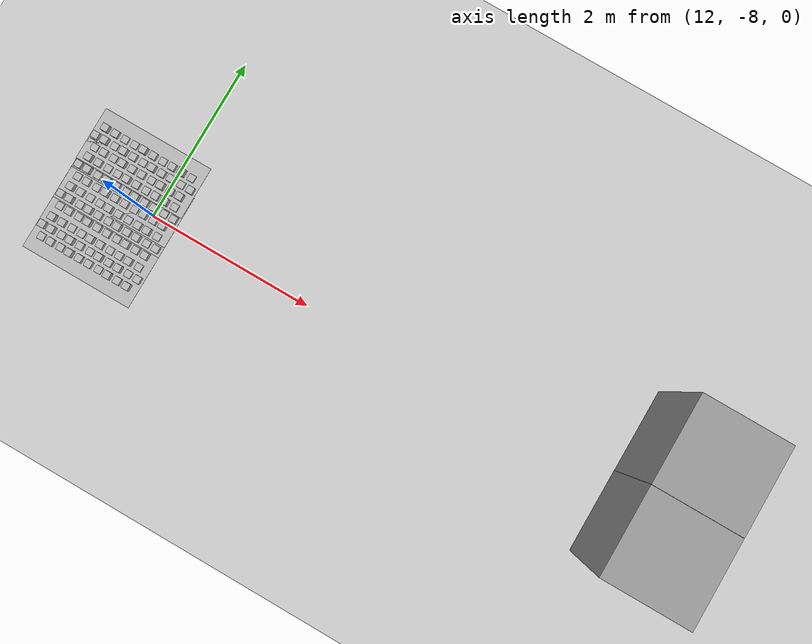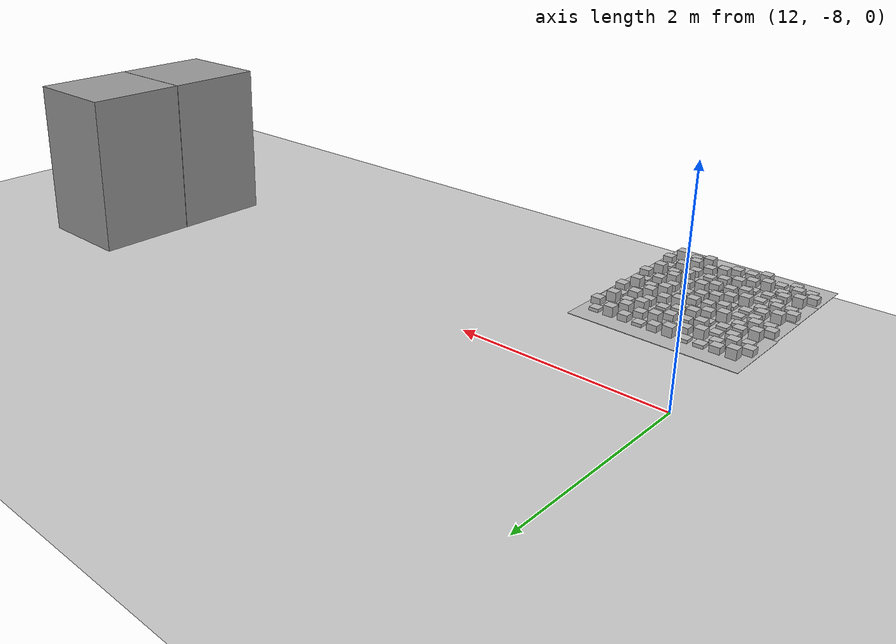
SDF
<sdf version="1.6">
 <world name="default">
  <model name="ground_plane">
   <static>1</static>
   <link name="link">
    <collision name="collision">
     <geometry><plane><normal>0 0 1</normal><size>100 100</size></plane></geometry>
     <surface><friction><ode><mu>100</mu><mu2>50</mu2></ode></friction></surface>
    </collision>
    <visual name="visual">
     <cast_shadows>0</cast_shadows>
     <geometry><plane><normal>0 0 1</normal><size>100 100</size></plane></geometry>
     <material>
      <script><uri>file://media/materials/scripts/gazebo.material</uri><name>Gazebo/Grey</name></script>
     </material>
    </visual>
   </link>
  </model>
  <model name="frc2016_roughterrain_clone_0_clone_clone_0">
   <static>1</static>
   <link name="link">
    <visual name="platform">
     <pose>0 0 0.08269 0 -0 0</pose>
     <geometry><box><size>1.27 0.5969 0.003175</size></box></geometry>
    </visual>
    <collision name="platform">
     <pose>0 0 0.08269 0 -0 0</pose>
     <geometry><box><size>1.27 0.5969 0.003175</size></box></geometry>
    </collision>
    <visual name="row1_block1_sm">
     <pose>0.51435 0.1143 0.09698 0 -0 0</pose>
     <geometry><box><size>0.0762 0.0762 0.0254</size></box></geometry>
    </visual>
    <collision name="row1_block1_sm">
     <pose>0.51435 0.1143 0.09698 0 -0 0</pose>
     <geometry><box><size>0.0762 0.0762 0.0254</size></box></geometry>
    </collision>
    <visual name="row1_block2_lg">
     <pose>0.40005 0.1143 0.12238 0 -0 0</pose>
     <geometry><box><size>0.0762 0.0762 0.0762</size></box></geometry>
    </visual>
    <collision name="row1_block2_lg">
     <pose>0.40005 0.1143 0.12238 0 -0 0</pose>
     <geometry><box><size>0.0762 0.0762 0.0762</size></box></geometry>
    </collision>
    <visual name="row1_block3_md">
     <pose>0.28575 0.1143 0.10968 0 -0 0</pose>
     <geometry><box><size>0.0762 0.0762 0.0508</size></box></geometry>
    </visual>
    <collision name="row1_block3_md">
     <pose>0.28575 0.1143 0.10968 0 -0 0</pose>
     <geometry><box><size>0.0762 0.0762 0.0508</size></box></geometry>
    </collision>
    <visual name="row1_block4_sm">
     <pose>0.17145 0.1143 0.09698 0 -0 0</pose>
     <geometry><box><size>0.0762 0.0762 0.0254</size></box></geometry>
    </visual>
    <collision name="row1_block4_sm">
     <pose>0.17145 0.1143 0.09698 0 -0 0</pose>
     <geometry><box><size>0.0762 0.0762 0.0254</size></box></geometry>
    </collision>
    <visual name="row1_block5_md">
     <pose>0.05715 0.1143 0.10968 0 -0 0</pose>
     <geometry><box><size>0.0762 0.0762 0.0508</size></box></geometry>
    </visual>
    <collision name="row1_block5_md">
     <pose>0.05715 0.1143 0.10968 0 -0 0</pose>
     <geometry><box><size>0.0762 0.0762 0.0508</size></box></geometry>
    </collision>
    <visual name="row1_block6_lg">
     <pose>-0.05715 0.1143 0.12238 0 -0 0</pose>
     <geometry><box><size>0.0762 0.0762 0.0762</size></box></geometry>
    </visual>
    <collision name="row1_block6_lg">
     <pose>-0.05715 0.1143 0.12238 0 -0 0</pose>
     <geometry><box><size>0.0762 0.0762 0.0762</size></box></geometry>
    </collision>
    <visual name="row1_block7_sm">
     <pose>-0.17145 0.1143 0.09698 0 -0 0</pose>
     <geometry><box><size>0.0762 0.0762 0.0254</size></box></geometry>
    </visual>
    <collision name="row1_block7_sm">
     <pose>-0.17145 0.1143 0.09698 0 -0 0</pose>
     <geometry><box><size>0.0762 0.0762 0.0254</size></box></geometry>
    </collision>
    <visual name="row1_block8_sm">
     <pose>-0.28575 0.1143 0.09698 0 -0 0</pose>
     <geometry><box><size>0.0762 0.0762 0.0254</size></box></geometry>
    </visual>
    <collision name="row1_block8_sm">
     <pose>-0.28575 0.1143 0.09698 0 -0 0</pose>
     <geometry><box><size>0.0762 0.0762 0.0254</size></box></geometry>
    </collision>
    <visual name="row1_block9_md">
     <pose>-0.40005 0.1143 0.10968 0 -0 0</pose>
     <geometry><box><size>0.0762 0.0762 0.0508</size></box></geometry>
    </visual>
    <collision name="row1_block9_md">
     <pose>-0.40005 0.1143 0.10968 0 -0 0</pose>
     <geometry><box><size>0.0762 0.0762 0.0508</size></box></geometry>
    </collision>
    <visual name="row1_block10_lg">
     <pose>-0.51435 0.1143 0.12238 0 -0 0</pose>
     <geometry><box><size>0.0762 0.0762 0.0762</size></box></geometry>
    </visual>
    <collision name="row1_block10_lg">
     <pose>-0.51435 0.1143 0.12238 0 -0 0</pose>
     <geometry><box><size>0.0762 0.0762 0.0762</size></box></geometry>
    </collision>
    <visual name="row2_block1_md">
     <pose>0.5715 0 0.10968 0 -0 0</pose>
     <geometry><box><size>0.0762 0.0762 0.0508</size></box></geometry>
    </visual>
    <collision name="row2_block1_md">
     <pose>0.5715 0 0.10968 0 -0 0</pose>
     <geometry><box><size>0.0762 0.0762 0.0508</size></box></geometry>
    </collision>
    <visual name="row2_block2_sm">
     <pose>0.4572 0 0.09698 0 -0 0</pose>
     <geometry><box><size>0.0762 0.0762 0.0254</size></box></geometry>
    </visual>
    <collision name="row2_block2_sm">
     <pose>0.4572 0 0.09698 0 -0 0</pose>
     <geometry><box><size>0.0762 0.0762 0.0254</size></box></geometry>
    </collision>
    <visual name="row2_block3_lg">
     <pose>0.3429 0 0.12238 0 -0 0</pose>
     <geometry><box><size>0.0762 0.0762 0.0762</size></box></geometry>
    </visual>
    <collision name="row2_block3_lg">
     <pose>0.3429 0 0.12238 0 -0 0</pose>
     <geometry><box><size>0.0762 0.0762 0.0762</size></box></geometry>
    </collision>
    <visual name="row2_block4_md">
     <pose>0.2286 0 0.10968 0 -0 0</pose>
     <geometry><box><size>0.0762 0.0762 0.0508</size></box></geometry>
    </visual>
    <collision name="row2_block4_md">
     <pose>0.2286 0 0.10968 0 -0 0</pose>
     <geometry><box><size>0.0762 0.0762 0.0508</size></box></geometry>
    </collision>
    <visual name="row2_block5_lg">
     <pose>0.1143 0 0.12238 0 -0 0</pose>
     <geometry><box><size>0.0762 0.0762 0.0762</size></box></geometry>
    </visual>
    <collision name="row2_block5_lg">
     <pose>0.1143 0 0.12238 0 -0 0</pose>
     <geometry><box><size>0.0762 0.0762 0.0762</size></box></geometry>
    </collision>
    <visual name="row2_block6_sm">
     <pose>0 0 0.09698 0 -0 0</pose>
     <geometry><box><size>0.0762 0.0762 0.0254</size></box></geometry>
    </visual>
    <collision name="row2_block6_sm">
     <pose>0 0 0.09698 0 -0 0</pose>
     <geometry><box><size>0.0762 0.0762 0.0254</size></box></geometry>
    </collision>
    <visual name="row2_block7_md">
     <pose>-0.1143 0 0.10968 0 -0 0</pose>
     <geometry><box><size>0.0762 0.0762 0.0508</size></box></geometry>
    </visual>
    <collision name="row2_block7_md">
     <pose>-0.1143 0 0.10968 0 -0 0</pose>
     <geometry><box><size>0.0762 0.0762 0.0508</size></box></geometry>
    </collision>
    <visual name="row2_block8_lg">
     <pose>-0.2286 0 0.12238 0 -0 0</pose>
     <geometry><box><size>0.0762 0.0762 0.0762</size></box></geometry>
    </visual>
    <collision name="row2_block8_lg">
     <pose>-0.2286 0 0.12238 0 -0 0</pose>
     <geometry><box><size>0.0762 0.0762 0.0762</size></box></geometry>
    </collision>
    <visual name="row2_block9_sm">
     <pose>-0.3429 0 0.09698 0 -0 0</pose>
     <geometry><box><size>0.0762 0.0762 0.0254</size></box></geometry>
    </visual>
    <collision name="row2_block9_sm">
     <pose>-0.3429 0 0.09698 0 -0 0</pose>
     <geometry><box><size>0.0762 0.0762 0.0254</size></box></geometry>
    </collision>
    <visual name="row2_block10_lg">
     <pose>-0.4572 0 0.12238 0 -0 0</pose>
     <geometry><box><size>0.0762 0.0762 0.0762</size></box></geometry>
    </visual>
    <collision name="row2_block10_lg">
     <pose>-0.4572 0 0.12238 0 -0 0</pose>
     <geometry><box><size>0.0762 0.0762 0.0762</size></box></geometry>
    </collision>
    <visual name="row2_block11_md">
     <pose>-0.5715 0 0.10968 0 -0 0</pose>
     <geometry><box><size>0.0762 0.0762 0.0508</size></box></geometry>
    </visual>
    <collision name="row2_block11_md">
     <pose>-0.5715 0 0.10968 0 -0 0</pose>
     <geometry><box><size>0.0762 0.0762 0.0508</size></box></geometry>
    </collision>
    <visual name="row3_block1_lg">
     <pose>0.51435 -0.1143 0.12238 0 -0 0</pose>
     <geometry><box><size>0.0762 0.0762 0.0762</size></box></geometry>
    </visual>
    <collision name="row3_block1_lg">
     <pose>0.51435 -0.1143 0.12238 0 -0 0</pose>
     <geometry><box><size>0.0762 0.0762 0.0762</size></box></geometry>
    </collision>
    <visual name="row3_block2_md">
     <pose>0.40005 -0.1143 0.10968 0 -0 0</pose>
     <geometry><box><size>0.0762 0.0762 0.0508</size></box></geometry>
    </visual>
    <collision name="row3_block2_md">
     <pose>0.40005 -0.1143 0.10968 0 -0 0</pose>
     <geometry><box><size>0.0762 0.0762 0.0508</size></box></geometry>
    </collision>
    <visual name="row3_block3_lg">
     <pose>0.28575 -0.1143 0.12238 0 -0 0</pose>
     <geometry><box><size>0.0762 0.0762 0.0762</size></box></geometry>
    </visual>
    <collision name="row3_block3_lg">
     <pose>0.28575 -0.1143 0.12238 0 -0 0</pose>
     <geometry><box><size>0.0762 0.0762 0.0762</size></box></geometry>
    </collision>
    <visual name="row3_block4_sm">
     <pose>0.17145 -0.1143 0.09698 0 -0 0</pose>
     <geometry><box><size>0.0762 0.0762 0.0254</size></box></geometry>
    </visual>
    <collision name="row3_block4_sm">
     <pose>0.17145 -0.1143 0.09698 0 -0 0</pose>
     <geometry><box><size>0.0762 0.0762 0.0254</size></box></geometry>
    </collision>
    <visual name="row3_block5_md">
     <pose>0.05715 -0.1143 0.10968 0 -0 0</pose>
     <geometry><box><size>0.0762 0.0762 0.0508</size></box></geometry>
    </visual>
    <collision name="row3_block5_md">
     <pose>0.05715 -0.1143 0.10968 0 -0 0</pose>
     <geometry><box><size>0.0762 0.0762 0.0508</size></box></geometry>
    </collision>
    <visual name="row3_block6_md">
     <pose>-0.05715 -0.1143 0.10968 0 -0 0</pose>
     <geometry><box><size>0.0762 0.0762 0.0508</size></box></geometry>
    </visual>
    <collision name="row3_block6_md">
     <pose>-0.05715 -0.1143 0.10968 0 -0 0</pose>
     <geometry><box><size>0.0762 0.0762 0.0508</size></box></geometry>
    </collision>
    <visual name="row3_block7_lg">
     <pose>-0.17145 -0.1143 0.12238 0 -0 0</pose>
     <geometry><box><size>0.0762 0.0762 0.0762</size></box></geometry>
    </visual>
    <collision name="row3_block7_lg">
     <pose>-0.17145 -0.1143 0.12238 0 -0 0</pose>
     <geometry><box><size>0.0762 0.0762 0.0762</size></box></geometry>
    </collision>
    <visual name="row3_block8_sm">
     <pose>-0.28575 -0.1143 0.09698 0 -0 0</pose>
     <geometry><box><size>0.0762 0.0762 0.0254</size></box></geometry>
    </visual>
    <collision name="row3_block8_sm">
     <pose>-0.28575 -0.1143 0.09698 0 -0 0</pose>
     <geometry><box><size>0.0762 0.0762 0.0254</size></box></geometry>
    </collision>
    <visual name="row3_block9_md">
     <pose>-0.40005 -0.1143 0.10968 0 -0 0</pose>
     <geometry><box><size>0.0762 0.0762 0.0508</size></box></geometry>
    </visual>
    <collision name="row3_block9_md">
     <pose>-0.40005 -0.1143 0.10968 0 -0 0</pose>
     <geometry><box><size>0.0762 0.0762 0.0508</size></box></geometry>
    </collision>
    <visual name="row3_block10_sm">
     <pose>-0.51435 -0.1143 0.09698 0 -0 0</pose>
     <geometry><box><size>0.0762 0.0762 0.0254</size></box></geometry>
    </visual>
    <collision name="row3_block10_sm">
     <pose>-0.51435 -0.1143 0.09698 0 -0 0</pose>
     <geometry><box><size>0.0762 0.0762 0.0254</size></box></geometry>
    </collision>
   </link>
   <pose>11.8871 -7.6007 0.826533 0 -0 0</pose>
  </model>
  <model name="frc2016_roughterrain_clone_0_clone_clone_1">
   <static>1</static>
   <link name="link">
    <visual name="platform">
     <pose>0 0 0.08269 0 -0 0</pose>
     <geometry><box><size>1.27 0.5969 0.003175</size></box></geometry>
    </visual>
    <collision name="platform">
     <pose>0 0 0.08269 0 -0 0</pose>
     <geometry><box><size>1.27 0.5969 0.003175</size></box></geometry>
    </collision>
    <visual name="row1_block1_sm">
     <pose>0.51435 0.1143 0.09698 0 -0 0</pose>
     <geometry><box><size>0.0762 0.0762 0.0254</size></box></geometry>
    </visual>
    <collision name="row1_block1_sm">
     <pose>0.51435 0.1143 0.09698 0 -0 0</pose>
     <geometry><box><size>0.0762 0.0762 0.0254</size></box></geometry>
    </collision>
    <visual name="row1_block2_lg">
     <pose>0.40005 0.1143 0.12238 0 -0 0</pose>
     <geometry><box><size>0.0762 0.0762 0.0762</size></box></geometry>
    </visual>
    <collision name="row1_block2_lg">
     <pose>0.40005 0.1143 0.12238 0 -0 0</pose>
     <geometry><box><size>0.0762 0.0762 0.0762</size></box></geometry>
    </collision>
    <visual name="row1_block3_md">
     <pose>0.28575 0.1143 0.10968 0 -0 0</pose>
     <geometry><box><size>0.0762 0.0762 0.0508</size></box></geometry>
    </visual>
    <collision name="row1_block3_md">
     <pose>0.28575 0.1143 0.10968 0 -0 0</pose>
     <geometry><box><size>0.0762 0.0762 0.0508</size></box></geometry>
    </collision>
    <visual name="row1_block4_sm">
     <pose>0.17145 0.1143 0.09698 0 -0 0</pose>
     <geometry><box><size>0.0762 0.0762 0.0254</size></box></geometry>
    </visual>
    <collision name="row1_block4_sm">
     <pose>0.17145 0.1143 0.09698 0 -0 0</pose>
     <geometry><box><size>0.0762 0.0762 0.0254</size></box></geometry>
    </collision>
    <visual name="row1_block5_md">
     <pose>0.05715 0.1143 0.10968 0 -0 0</pose>
     <geometry><box><size>0.0762 0.0762 0.0508</size></box></geometry>
    </visual>
    <collision name="row1_block5_md">
     <pose>0.05715 0.1143 0.10968 0 -0 0</pose>
     <geometry><box><size>0.0762 0.0762 0.0508</size></box></geometry>
    </collision>
    <visual name="row1_block6_lg">
     <pose>-0.05715 0.1143 0.12238 0 -0 0</pose>
     <geometry><box><size>0.0762 0.0762 0.0762</size></box></geometry>
    </visual>
    <collision name="row1_block6_lg">
     <pose>-0.05715 0.1143 0.12238 0 -0 0</pose>
     <geometry><box><size>0.0762 0.0762 0.0762</size></box></geometry>
    </collision>
    <visual name="row1_block7_sm">
     <pose>-0.17145 0.1143 0.09698 0 -0 0</pose>
     <geometry><box><size>0.0762 0.0762 0.0254</size></box></geometry>
    </visual>
    <collision name="row1_block7_sm">
     <pose>-0.17145 0.1143 0.09698 0 -0 0</pose>
     <geometry><box><size>0.0762 0.0762 0.0254</size></box></geometry>
    </collision>
    <visual name="row1_block8_sm">
     <pose>-0.28575 0.1143 0.09698 0 -0 0</pose>
     <geometry><box><size>0.0762 0.0762 0.0254</size></box></geometry>
    </visual>
    <collision name="row1_block8_sm">
     <pose>-0.28575 0.1143 0.09698 0 -0 0</pose>
     <geometry><box><size>0.0762 0.0762 0.0254</size></box></geometry>
    </collision>
    <visual name="row1_block9_md">
     <pose>-0.40005 0.1143 0.10968 0 -0 0</pose>
     <geometry><box><size>0.0762 0.0762 0.0508</size></box></geometry>
    </visual>
    <collision name="row1_block9_md">
     <pose>-0.40005 0.1143 0.10968 0 -0 0</pose>
     <geometry><box><size>0.0762 0.0762 0.0508</size></box></geometry>
    </collision>
    <visual name="row1_block10_lg">
     <pose>-0.51435 0.1143 0.12238 0 -0 0</pose>
     <geometry><box><size>0.0762 0.0762 0.0762</size></box></geometry>
    </visual>
    <collision name="row1_block10_lg">
     <pose>-0.51435 0.1143 0.12238 0 -0 0</pose>
     <geometry><box><size>0.0762 0.0762 0.0762</size></box></geometry>
    </collision>
    <visual name="row2_block1_md">
     <pose>0.5715 0 0.10968 0 -0 0</pose>
     <geometry><box><size>0.0762 0.0762 0.0508</size></box></geometry>
    </visual>
    <collision name="row2_block1_md">
     <pose>0.5715 0 0.10968 0 -0 0</pose>
     <geometry><box><size>0.0762 0.0762 0.0508</size></box></geometry>
    </collision>
    <visual name="row2_block2_sm">
     <pose>0.4572 0 0.09698 0 -0 0</pose>
     <geometry><box><size>0.0762 0.0762 0.0254</size></box></geometry>
    </visual>
    <collision name="row2_block2_sm">
     <pose>0.4572 0 0.09698 0 -0 0</pose>
     <geometry><box><size>0.0762 0.0762 0.0254</size></box></geometry>
    </collision>
    <visual name="row2_block3_lg">
     <pose>0.3429 0 0.12238 0 -0 0</pose>
     <geometry><box><size>0.0762 0.0762 0.0762</size></box></geometry>
    </visual>
    <collision name="row2_block3_lg">
     <pose>0.3429 0 0.12238 0 -0 0</pose>
     <geometry><box><size>0.0762 0.0762 0.0762</size></box></geometry>
    </collision>
    <visual name="row2_block4_md">
     <pose>0.2286 0 0.10968 0 -0 0</pose>
     <geometry><box><size>0.0762 0.0762 0.0508</size></box></geometry>
    </visual>
    <collision name="row2_block4_md">
     <pose>0.2286 0 0.10968 0 -0 0</pose>
     <geometry><box><size>0.0762 0.0762 0.0508</size></box></geometry>
    </collision>
    <visual name="row2_block5_lg">
     <pose>0.1143 0 0.12238 0 -0 0</pose>
     <geometry><box><size>0.0762 0.0762 0.0762</size></box></geometry>
    </visual>
    <collision name="row2_block5_lg">
     <pose>0.1143 0 0.12238 0 -0 0</pose>
     <geometry><box><size>0.0762 0.0762 0.0762</size></box></geometry>
    </collision>
    <visual name="row2_block6_sm">
     <pose>0 0 0.09698 0 -0 0</pose>
     <geometry><box><size>0.0762 0.0762 0.0254</size></box></geometry>
    </visual>
    <collision name="row2_block6_sm">
     <pose>0 0 0.09698 0 -0 0</pose>
     <geometry><box><size>0.0762 0.0762 0.0254</size></box></geometry>
    </collision>
    <visual name="row2_block7_md">
     <pose>-0.1143 0 0.10968 0 -0 0</pose>
     <geometry><box><size>0.0762 0.0762 0.0508</size></box></geometry>
    </visual>
    <collision name="row2_block7_md">
     <pose>-0.1143 0 0.10968 0 -0 0</pose>
     <geometry><box><size>0.0762 0.0762 0.0508</size></box></geometry>
    </collision>
    <visual name="row2_block8_lg">
     <pose>-0.2286 0 0.12238 0 -0 0</pose>
     <geometry><box><size>0.0762 0.0762 0.0762</size></box></geometry>
    </visual>
    <collision name="row2_block8_lg">
     <pose>-0.2286 0 0.12238 0 -0 0</pose>
     <geometry><box><size>0.0762 0.0762 0.0762</size></box></geometry>
    </collision>
    <visual name="row2_block9_sm">
     <pose>-0.3429 0 0.09698 0 -0 0</pose>
     <geometry><box><size>0.0762 0.0762 0.0254</size></box></geometry>
    </visual>
    <collision name="row2_block9_sm">
     <pose>-0.3429 0 0.09698 0 -0 0</pose>
     <geometry><box><size>0.0762 0.0762 0.0254</size></box></geometry>
    </collision>
    <visual name="row2_block10_lg">
     <pose>-0.4572 0 0.12238 0 -0 0</pose>
     <geometry><box><size>0.0762 0.0762 0.0762</size></box></geometry>
    </visual>
    <collision name="row2_block10_lg">
     <pose>-0.4572 0 0.12238 0 -0 0</pose>
     <geometry><box><size>0.0762 0.0762 0.0762</size></box></geometry>
    </collision>
    <visual name="row2_block11_md">
     <pose>-0.5715 0 0.10968 0 -0 0</pose>
     <geometry><box><size>0.0762 0.0762 0.0508</size></box></geometry>
    </visual>
    <collision name="row2_block11_md">
     <pose>-0.5715 0 0.10968 0 -0 0</pose>
     <geometry><box><size>0.0762 0.0762 0.0508</size></box></geometry>
    </collision>
    <visual name="row3_block1_lg">
     <pose>0.51435 -0.1143 0.12238 0 -0 0</pose>
     <geometry><box><size>0.0762 0.0762 0.0762</size></box></geometry>
    </visual>
    <collision name="row3_block1_lg">
     <pose>0.51435 -0.1143 0.12238 0 -0 0</pose>
     <geometry><box><size>0.0762 0.0762 0.0762</size></box></geometry>
    </collision>
    <visual name="row3_block2_md">
     <pose>0.40005 -0.1143 0.10968 0 -0 0</pose>
     <geometry><box><size>0.0762 0.0762 0.0508</size></box></geometry>
    </visual>
    <collision name="row3_block2_md">
     <pose>0.40005 -0.1143 0.10968 0 -0 0</pose>
     <geometry><box><size>0.0762 0.0762 0.0508</size></box></geometry>
    </collision>
    <visual name="row3_block3_lg">
     <pose>0.28575 -0.1143 0.12238 0 -0 0</pose>
     <geometry><box><size>0.0762 0.0762 0.0762</size></box></geometry>
    </visual>
    <collision name="row3_block3_lg">
     <pose>0.28575 -0.1143 0.12238 0 -0 0</pose>
     <geometry><box><size>0.0762 0.0762 0.0762</size></box></geometry>
    </collision>
    <visual name="row3_block4_sm">
     <pose>0.17145 -0.1143 0.09698 0 -0 0</pose>
     <geometry><box><size>0.0762 0.0762 0.0254</size></box></geometry>
    </visual>
    <collision name="row3_block4_sm">
     <pose>0.17145 -0.1143 0.09698 0 -0 0</pose>
     <geometry><box><size>0.0762 0.0762 0.0254</size></box></geometry>
    </collision>
    <visual name="row3_block5_md">
     <pose>0.05715 -0.1143 0.10968 0 -0 0</pose>
     <geometry><box><size>0.0762 0.0762 0.0508</size></box></geometry>
    </visual>
    <collision name="row3_block5_md">
     <pose>0.05715 -0.1143 0.10968 0 -0 0</pose>
     <geometry><box><size>0.0762 0.0762 0.0508</size></box></geometry>
    </collision>
    <visual name="row3_block6_md">
     <pose>-0.05715 -0.1143 0.10968 0 -0 0</pose>
     <geometry><box><size>0.0762 0.0762 0.0508</size></box></geometry>
    </visual>
    <collision name="row3_block6_md">
     <pose>-0.05715 -0.1143 0.10968 0 -0 0</pose>
     <geometry><box><size>0.0762 0.0762 0.0508</size></box></geometry>
    </collision>
    <visual name="row3_block7_lg">
     <pose>-0.17145 -0.1143 0.12238 0 -0 0</pose>
     <geometry><box><size>0.0762 0.0762 0.0762</size></box></geometry>
    </visual>
    <collision name="row3_block7_lg">
     <pose>-0.17145 -0.1143 0.12238 0 -0 0</pose>
     <geometry><box><size>0.0762 0.0762 0.0762</size></box></geometry>
    </collision>
    <visual name="row3_block8_sm">
     <pose>-0.28575 -0.1143 0.09698 0 -0 0</pose>
     <geometry><box><size>0.0762 0.0762 0.0254</size></box></geometry>
    </visual>
    <collision name="row3_block8_sm">
     <pose>-0.28575 -0.1143 0.09698 0 -0 0</pose>
     <geometry><box><size>0.0762 0.0762 0.0254</size></box></geometry>
    </collision>
    <visual name="row3_block9_md">
     <pose>-0.40005 -0.1143 0.10968 0 -0 0</pose>
     <geometry><box><size>0.0762 0.0762 0.0508</size></box></geometry>
    </visual>
    <collision name="row3_block9_md">
     <pose>-0.40005 -0.1143 0.10968 0 -0 0</pose>
     <geometry><box><size>0.0762 0.0762 0.0508</size></box></geometry>
    </collision>
    <visual name="row3_block10_sm">
     <pose>-0.51435 -0.1143 0.09698 0 -0 0</pose>
     <geometry><box><size>0.0762 0.0762 0.0254</size></box></geometry>
    </visual>
    <collision name="row3_block10_sm">
     <pose>-0.51435 -0.1143 0.09698 0 -0 0</pose>
     <geometry><box><size>0.0762 0.0762 0.0254</size></box></geometry>
    </collision>
   </link>
   <pose>11.8947 -7.94761 0.826533 0 -0 0</pose>
  </model>
  <model name="frc2016_roughterrain_clone_0_clone_clone_2">
   <static>1</static>
   <link name="link">
    <visual name="platform">
     <pose>0 0 0.08269 0 -0 0</pose>
     <geometry><box><size>1.27 0.5969 0.003175</size></box></geometry>
    </visual>
    <collision name="platform">
     <pose>0 0 0.08269 0 -0 0</pose>
     <geometry><box><size>1.27 0.5969 0.003175</size></box></geometry>
    </collision>
    <visual name="row1_block1_sm">
     <pose>0.51435 0.1143 0.09698 0 -0 0</pose>
     <geometry><box><size>0.0762 0.0762 0.0254</size></box></geometry>
    </visual>
    <collision name="row1_block1_sm">
     <pose>0.51435 0.1143 0.09698 0 -0 0</pose>
     <geometry><box><size>0.0762 0.0762 0.0254</size></box></geometry>
    </collision>
    <visual name="row1_block2_lg">
     <pose>0.40005 0.1143 0.12238 0 -0 0</pose>
     <geometry><box><size>0.0762 0.0762 0.0762</size></box></geometry>
    </visual>
    <collision name="row1_block2_lg">
     <pose>0.40005 0.1143 0.12238 0 -0 0</pose>
     <geometry><box><size>0.0762 0.0762 0.0762</size></box></geometry>
    </collision>
    <visual name="row1_block3_md">
     <pose>0.28575 0.1143 0.10968 0 -0 0</pose>
     <geometry><box><size>0.0762 0.0762 0.0508</size></box></geometry>
    </visual>
    <collision name="row1_block3_md">
     <pose>0.28575 0.1143 0.10968 0 -0 0</pose>
     <geometry><box><size>0.0762 0.0762 0.0508</size></box></geometry>
    </collision>
    <visual name="row1_block4_sm">
     <pose>0.17145 0.1143 0.09698 0 -0 0</pose>
     <geometry><box><size>0.0762 0.0762 0.0254</size></box></geometry>
    </visual>
    <collision name="row1_block4_sm">
     <pose>0.17145 0.1143 0.09698 0 -0 0</pose>
     <geometry><box><size>0.0762 0.0762 0.0254</size></box></geometry>
    </collision>
    <visual name="row1_block5_md">
     <pose>0.05715 0.1143 0.10968 0 -0 0</pose>
     <geometry><box><size>0.0762 0.0762 0.0508</size></box></geometry>
    </visual>
    <collision name="row1_block5_md">
     <pose>0.05715 0.1143 0.10968 0 -0 0</pose>
     <geometry><box><size>0.0762 0.0762 0.0508</size></box></geometry>
    </collision>
    <visual name="row1_block6_lg">
     <pose>-0.05715 0.1143 0.12238 0 -0 0</pose>
     <geometry><box><size>0.0762 0.0762 0.0762</size></box></geometry>
    </visual>
    <collision name="row1_block6_lg">
     <pose>-0.05715 0.1143 0.12238 0 -0 0</pose>
     <geometry><box><size>0.0762 0.0762 0.0762</size></box></geometry>
    </collision>
    <visual name="row1_block7_sm">
     <pose>-0.17145 0.1143 0.09698 0 -0 0</pose>
     <geometry><box><size>0.0762 0.0762 0.0254</size></box></geometry>
    </visual>
    <collision name="row1_block7_sm">
     <pose>-0.17145 0.1143 0.09698 0 -0 0</pose>
     <geometry><box><size>0.0762 0.0762 0.0254</size></box></geometry>
    </collision>
    <visual name="row1_block8_sm">
     <pose>-0.28575 0.1143 0.09698 0 -0 0</pose>
     <geometry><box><size>0.0762 0.0762 0.0254</size></box></geometry>
    </visual>
    <collision name="row1_block8_sm">
     <pose>-0.28575 0.1143 0.09698 0 -0 0</pose>
     <geometry><box><size>0.0762 0.0762 0.0254</size></box></geometry>
    </collision>
    <visual name="row1_block9_md">
     <pose>-0.40005 0.1143 0.10968 0 -0 0</pose>
     <geometry><box><size>0.0762 0.0762 0.0508</size></box></geometry>
    </visual>
    <collision name="row1_block9_md">
     <pose>-0.40005 0.1143 0.10968 0 -0 0</pose>
     <geometry><box><size>0.0762 0.0762 0.0508</size></box></geometry>
    </collision>
    <visual name="row1_block10_lg">
     <pose>-0.51435 0.1143 0.12238 0 -0 0</pose>
     <geometry><box><size>0.0762 0.0762 0.0762</size></box></geometry>
    </visual>
    <collision name="row1_block10_lg">
     <pose>-0.51435 0.1143 0.12238 0 -0 0</pose>
     <geometry><box><size>0.0762 0.0762 0.0762</size></box></geometry>
    </collision>
    <visual name="row2_block1_md">
     <pose>0.5715 0 0.10968 0 -0 0</pose>
     <geometry><box><size>0.0762 0.0762 0.0508</size></box></geometry>
    </visual>
    <collision name="row2_block1_md">
     <pose>0.5715 0 0.10968 0 -0 0</pose>
     <geometry><box><size>0.0762 0.0762 0.0508</size></box></geometry>
    </collision>
    <visual name="row2_block2_sm">
     <pose>0.4572 0 0.09698 0 -0 0</pose>
     <geometry><box><size>0.0762 0.0762 0.0254</size></box></geometry>
    </visual>
    <collision name="row2_block2_sm">
     <pose>0.4572 0 0.09698 0 -0 0</pose>
     <geometry><box><size>0.0762 0.0762 0.0254</size></box></geometry>
    </collision>
    <visual name="row2_block3_lg">
     <pose>0.3429 0 0.12238 0 -0 0</pose>
     <geometry><box><size>0.0762 0.0762 0.0762</size></box></geometry>
    </visual>
    <collision name="row2_block3_lg">
     <pose>0.3429 0 0.12238 0 -0 0</pose>
     <geometry><box><size>0.0762 0.0762 0.0762</size></box></geometry>
    </collision>
    <visual name="row2_block4_md">
     <pose>0.2286 0 0.10968 0 -0 0</pose>
     <geometry><box><size>0.0762 0.0762 0.0508</size></box></geometry>
    </visual>
    <collision name="row2_block4_md">
     <pose>0.2286 0 0.10968 0 -0 0</pose>
     <geometry><box><size>0.0762 0.0762 0.0508</size></box></geometry>
    </collision>
    <visual name="row2_block5_lg">
     <pose>0.1143 0 0.12238 0 -0 0</pose>
     <geometry><box><size>0.0762 0.0762 0.0762</size></box></geometry>
    </visual>
    <collision name="row2_block5_lg">
     <pose>0.1143 0 0.12238 0 -0 0</pose>
     <geometry><box><size>0.0762 0.0762 0.0762</size></box></geometry>
    </collision>
    <visual name="row2_block6_sm">
     <pose>0 0 0.09698 0 -0 0</pose>
     <geometry><box><size>0.0762 0.0762 0.0254</size></box></geometry>
    </visual>
    <collision name="row2_block6_sm">
     <pose>0 0 0.09698 0 -0 0</pose>
     <geometry><box><size>0.0762 0.0762 0.0254</size></box></geometry>
    </collision>
    <visual name="row2_block7_md">
     <pose>-0.1143 0 0.10968 0 -0 0</pose>
     <geometry><box><size>0.0762 0.0762 0.0508</size></box></geometry>
    </visual>
    <collision name="row2_block7_md">
     <pose>-0.1143 0 0.10968 0 -0 0</pose>
     <geometry><box><size>0.0762 0.0762 0.0508</size></box></geometry>
    </collision>
    <visual name="row2_block8_lg">
     <pose>-0.2286 0 0.12238 0 -0 0</pose>
     <geometry><box><size>0.0762 0.0762 0.0762</size></box></geometry>
    </visual>
    <collision name="row2_block8_lg">
     <pose>-0.2286 0 0.12238 0 -0 0</pose>
     <geometry><box><size>0.0762 0.0762 0.0762</size></box></geometry>
    </collision>
    <visual name="row2_block9_sm">
     <pose>-0.3429 0 0.09698 0 -0 0</pose>
     <geometry><box><size>0.0762 0.0762 0.0254</size></box></geometry>
    </visual>
    <collision name="row2_block9_sm">
     <pose>-0.3429 0 0.09698 0 -0 0</pose>
     <geometry><box><size>0.0762 0.0762 0.0254</size></box></geometry>
    </collision>
    <visual name="row2_block10_lg">
     <pose>-0.4572 0 0.12238 0 -0 0</pose>
     <geometry><box><size>0.0762 0.0762 0.0762</size></box></geometry>
    </visual>
    <collision name="row2_block10_lg">
     <pose>-0.4572 0 0.12238 0 -0 0</pose>
     <geometry><box><size>0.0762 0.0762 0.0762</size></box></geometry>
    </collision>
    <visual name="row2_block11_md">
     <pose>-0.5715 0 0.10968 0 -0 0</pose>
     <geometry><box><size>0.0762 0.0762 0.0508</size></box></geometry>
    </visual>
    <collision name="row2_block11_md">
     <pose>-0.5715 0 0.10968 0 -0 0</pose>
     <geometry><box><size>0.0762 0.0762 0.0508</size></box></geometry>
    </collision>
    <visual name="row3_block1_lg">
     <pose>0.51435 -0.1143 0.12238 0 -0 0</pose>
     <geometry><box><size>0.0762 0.0762 0.0762</size></box></geometry>
    </visual>
    <collision name="row3_block1_lg">
     <pose>0.51435 -0.1143 0.12238 0 -0 0</pose>
     <geometry><box><size>0.0762 0.0762 0.0762</size></box></geometry>
    </collision>
    <visual name="row3_block2_md">
     <pose>0.40005 -0.1143 0.10968 0 -0 0</pose>
     <geometry><box><size>0.0762 0.0762 0.0508</size></box></geometry>
    </visual>
    <collision name="row3_block2_md">
     <pose>0.40005 -0.1143 0.10968 0 -0 0</pose>
     <geometry><box><size>0.0762 0.0762 0.0508</size></box></geometry>
    </collision>
    <visual name="row3_block3_lg">
     <pose>0.28575 -0.1143 0.12238 0 -0 0</pose>
     <geometry><box><size>0.0762 0.0762 0.0762</size></box></geometry>
    </visual>
    <collision name="row3_block3_lg">
     <pose>0.28575 -0.1143 0.12238 0 -0 0</pose>
     <geometry><box><size>0.0762 0.0762 0.0762</size></box></geometry>
    </collision>
    <visual name="row3_block4_sm">
     <pose>0.17145 -0.1143 0.09698 0 -0 0</pose>
     <geometry><box><size>0.0762 0.0762 0.0254</size></box></geometry>
    </visual>
    <collision name="row3_block4_sm">
     <pose>0.17145 -0.1143 0.09698 0 -0 0</pose>
     <geometry><box><size>0.0762 0.0762 0.0254</size></box></geometry>
    </collision>
    <visual name="row3_block5_md">
     <pose>0.05715 -0.1143 0.10968 0 -0 0</pose>
     <geometry><box><size>0.0762 0.0762 0.0508</size></box></geometry>
    </visual>
    <collision name="row3_block5_md">
     <pose>0.05715 -0.1143 0.10968 0 -0 0</pose>
     <geometry><box><size>0.0762 0.0762 0.0508</size></box></geometry>
    </collision>
    <visual name="row3_block6_md">
     <pose>-0.05715 -0.1143 0.10968 0 -0 0</pose>
     <geometry><box><size>0.0762 0.0762 0.0508</size></box></geometry>
    </visual>
    <collision name="row3_block6_md">
     <pose>-0.05715 -0.1143 0.10968 0 -0 0</pose>
     <geometry><box><size>0.0762 0.0762 0.0508</size></box></geometry>
    </collision>
    <visual name="row3_block7_lg">
     <pose>-0.17145 -0.1143 0.12238 0 -0 0</pose>
     <geometry><box><size>0.0762 0.0762 0.0762</size></box></geometry>
    </visual>
    <collision name="row3_block7_lg">
     <pose>-0.17145 -0.1143 0.12238 0 -0 0</pose>
     <geometry><box><size>0.0762 0.0762 0.0762</size></box></geometry>
    </collision>
    <visual name="row3_block8_sm">
     <pose>-0.28575 -0.1143 0.09698 0 -0 0</pose>
     <geometry><box><size>0.0762 0.0762 0.0254</size></box></geometry>
    </visual>
    <collision name="row3_block8_sm">
     <pose>-0.28575 -0.1143 0.09698 0 -0 0</pose>
     <geometry><box><size>0.0762 0.0762 0.0254</size></box></geometry>
    </collision>
    <visual name="row3_block9_md">
     <pose>-0.40005 -0.1143 0.10968 0 -0 0</pose>
     <geometry><box><size>0.0762 0.0762 0.0508</size></box></geometry>
    </visual>
    <collision name="row3_block9_md">
     <pose>-0.40005 -0.1143 0.10968 0 -0 0</pose>
     <geometry><box><size>0.0762 0.0762 0.0508</size></box></geometry>
    </collision>
    <visual name="row3_block10_sm">
     <pose>-0.51435 -0.1143 0.09698 0 -0 0</pose>
     <geometry><box><size>0.0762 0.0762 0.0254</size></box></geometry>
    </visual>
    <collision name="row3_block10_sm">
     <pose>-0.51435 -0.1143 0.09698 0 -0 0</pose>
     <geometry><box><size>0.0762 0.0762 0.0254</size></box></geometry>
    </collision>
   </link>
   <pose>11.8965 -8.30003 0.826533 0 -0 0</pose>
  </model>
  <model name="frc2016_roughterrain_clone_0_clone_clone_3">
   <static>1</static>
   <link name="link">
    <visual name="platform">
     <pose>0 0 0.08269 0 -0 0</pose>
     <geometry><box><size>1.27 0.5969 0.003175</size></box></geometry>
    </visual>
    <collision name="platform">
     <pose>0 0 0.08269 0 -0 0</pose>
     <geometry><box><size>1.27 0.5969 0.003175</size></box></geometry>
    </collision>
    <visual name="row1_block1_sm">
     <pose>0.51435 0.1143 0.09698 0 -0 0</pose>
     <geometry><box><size>0.0762 0.0762 0.0254</size></box></geometry>
    </visual>
    <collision name="row1_block1_sm">
     <pose>0.51435 0.1143 0.09698 0 -0 0</pose>
     <geometry><box><size>0.0762 0.0762 0.0254</size></box></geometry>
    </collision>
    <visual name="row1_block2_lg">
     <pose>0.40005 0.1143 0.12238 0 -0 0</pose>
     <geometry><box><size>0.0762 0.0762 0.0762</size></box></geometry>
    </visual>
    <collision name="row1_block2_lg">
     <pose>0.40005 0.1143 0.12238 0 -0 0</pose>
     <geometry><box><size>0.0762 0.0762 0.0762</size></box></geometry>
    </collision>
    <visual name="row1_block3_md">
     <pose>0.28575 0.1143 0.10968 0 -0 0</pose>
     <geometry><box><size>0.0762 0.0762 0.0508</size></box></geometry>
    </visual>
    <collision name="row1_block3_md">
     <pose>0.28575 0.1143 0.10968 0 -0 0</pose>
     <geometry><box><size>0.0762 0.0762 0.0508</size></box></geometry>
    </collision>
    <visual name="row1_block4_sm">
     <pose>0.17145 0.1143 0.09698 0 -0 0</pose>
     <geometry><box><size>0.0762 0.0762 0.0254</size></box></geometry>
    </visual>
    <collision name="row1_block4_sm">
     <pose>0.17145 0.1143 0.09698 0 -0 0</pose>
     <geometry><box><size>0.0762 0.0762 0.0254</size></box></geometry>
    </collision>
    <visual name="row1_block5_md">
     <pose>0.05715 0.1143 0.10968 0 -0 0</pose>
     <geometry><box><size>0.0762 0.0762 0.0508</size></box></geometry>
    </visual>
    <collision name="row1_block5_md">
     <pose>0.05715 0.1143 0.10968 0 -0 0</pose>
     <geometry><box><size>0.0762 0.0762 0.0508</size></box></geometry>
    </collision>
    <visual name="row1_block6_lg">
     <pose>-0.05715 0.1143 0.12238 0 -0 0</pose>
     <geometry><box><size>0.0762 0.0762 0.0762</size></box></geometry>
    </visual>
    <collision name="row1_block6_lg">
     <pose>-0.05715 0.1143 0.12238 0 -0 0</pose>
     <geometry><box><size>0.0762 0.0762 0.0762</size></box></geometry>
    </collision>
    <visual name="row1_block7_sm">
     <pose>-0.17145 0.1143 0.09698 0 -0 0</pose>
     <geometry><box><size>0.0762 0.0762 0.0254</size></box></geometry>
    </visual>
    <collision name="row1_block7_sm">
     <pose>-0.17145 0.1143 0.09698 0 -0 0</pose>
     <geometry><box><size>0.0762 0.0762 0.0254</size></box></geometry>
    </collision>
    <visual name="row1_block8_sm">
     <pose>-0.28575 0.1143 0.09698 0 -0 0</pose>
     <geometry><box><size>0.0762 0.0762 0.0254</size></box></geometry>
    </visual>
    <collision name="row1_block8_sm">
     <pose>-0.28575 0.1143 0.09698 0 -0 0</pose>
     <geometry><box><size>0.0762 0.0762 0.0254</size></box></geometry>
    </collision>
    <visual name="row1_block9_md">
     <pose>-0.40005 0.1143 0.10968 0 -0 0</pose>
     <geometry><box><size>0.0762 0.0762 0.0508</size></box></geometry>
    </visual>
    <collision name="row1_block9_md">
     <pose>-0.40005 0.1143 0.10968 0 -0 0</pose>
     <geometry><box><size>0.0762 0.0762 0.0508</size></box></geometry>
    </collision>
    <visual name="row1_block10_lg">
     <pose>-0.51435 0.1143 0.12238 0 -0 0</pose>
     <geometry><box><size>0.0762 0.0762 0.0762</size></box></geometry>
    </visual>
    <collision name="row1_block10_lg">
     <pose>-0.51435 0.1143 0.12238 0 -0 0</pose>
     <geometry><box><size>0.0762 0.0762 0.0762</size></box></geometry>
    </collision>
    <visual name="row2_block1_md">
     <pose>0.5715 0 0.10968 0 -0 0</pose>
     <geometry><box><size>0.0762 0.0762 0.0508</size></box></geometry>
    </visual>
    <collision name="row2_block1_md">
     <pose>0.5715 0 0.10968 0 -0 0</pose>
     <geometry><box><size>0.0762 0.0762 0.0508</size></box></geometry>
    </collision>
    <visual name="row2_block2_sm">
     <pose>0.4572 0 0.09698 0 -0 0</pose>
     <geometry><box><size>0.0762 0.0762 0.0254</size></box></geometry>
    </visual>
    <collision name="row2_block2_sm">
     <pose>0.4572 0 0.09698 0 -0 0</pose>
     <geometry><box><size>0.0762 0.0762 0.0254</size></box></geometry>
    </collision>
    <visual name="row2_block3_lg">
     <pose>0.3429 0 0.12238 0 -0 0</pose>
     <geometry><box><size>0.0762 0.0762 0.0762</size></box></geometry>
    </visual>
    <collision name="row2_block3_lg">
     <pose>0.3429 0 0.12238 0 -0 0</pose>
     <geometry><box><size>0.0762 0.0762 0.0762</size></box></geometry>
    </collision>
    <visual name="row2_block4_md">
     <pose>0.2286 0 0.10968 0 -0 0</pose>
     <geometry><box><size>0.0762 0.0762 0.0508</size></box></geometry>
    </visual>
    <collision name="row2_block4_md">
     <pose>0.2286 0 0.10968 0 -0 0</pose>
     <geometry><box><size>0.0762 0.0762 0.0508</size></box></geometry>
    </collision>
    <visual name="row2_block5_lg">
     <pose>0.1143 0 0.12238 0 -0 0</pose>
     <geometry><box><size>0.0762 0.0762 0.0762</size></box></geometry>
    </visual>
    <collision name="row2_block5_lg">
     <pose>0.1143 0 0.12238 0 -0 0</pose>
     <geometry><box><size>0.0762 0.0762 0.0762</size></box></geometry>
    </collision>
    <visual name="row2_block6_sm">
     <pose>0 0 0.09698 0 -0 0</pose>
     <geometry><box><size>0.0762 0.0762 0.0254</size></box></geometry>
    </visual>
    <collision name="row2_block6_sm">
     <pose>0 0 0.09698 0 -0 0</pose>
     <geometry><box><size>0.0762 0.0762 0.0254</size></box></geometry>
    </collision>
    <visual name="row2_block7_md">
     <pose>-0.1143 0 0.10968 0 -0 0</pose>
     <geometry><box><size>0.0762 0.0762 0.0508</size></box></geometry>
    </visual>
    <collision name="row2_block7_md">
     <pose>-0.1143 0 0.10968 0 -0 0</pose>
     <geometry><box><size>0.0762 0.0762 0.0508</size></box></geometry>
    </collision>
    <visual name="row2_block8_lg">
     <pose>-0.2286 0 0.12238 0 -0 0</pose>
     <geometry><box><size>0.0762 0.0762 0.0762</size></box></geometry>
    </visual>
    <collision name="row2_block8_lg">
     <pose>-0.2286 0 0.12238 0 -0 0</pose>
     <geometry><box><size>0.0762 0.0762 0.0762</size></box></geometry>
    </collision>
    <visual name="row2_block9_sm">
     <pose>-0.3429 0 0.09698 0 -0 0</pose>
     <geometry><box><size>0.0762 0.0762 0.0254</size></box></geometry>
    </visual>
    <collision name="row2_block9_sm">
     <pose>-0.3429 0 0.09698 0 -0 0</pose>
     <geometry><box><size>0.0762 0.0762 0.0254</size></box></geometry>
    </collision>
    <visual name="row2_block10_lg">
     <pose>-0.4572 0 0.12238 0 -0 0</pose>
     <geometry><box><size>0.0762 0.0762 0.0762</size></box></geometry>
    </visual>
    <collision name="row2_block10_lg">
     <pose>-0.4572 0 0.12238 0 -0 0</pose>
     <geometry><box><size>0.0762 0.0762 0.0762</size></box></geometry>
    </collision>
    <visual name="row2_block11_md">
     <pose>-0.5715 0 0.10968 0 -0 0</pose>
     <geometry><box><size>0.0762 0.0762 0.0508</size></box></geometry>
    </visual>
    <collision name="row2_block11_md">
     <pose>-0.5715 0 0.10968 0 -0 0</pose>
     <geometry><box><size>0.0762 0.0762 0.0508</size></box></geometry>
    </collision>
    <visual name="row3_block1_lg">
     <pose>0.51435 -0.1143 0.12238 0 -0 0</pose>
     <geometry><box><size>0.0762 0.0762 0.0762</size></box></geometry>
    </visual>
    <collision name="row3_block1_lg">
     <pose>0.51435 -0.1143 0.12238 0 -0 0</pose>
     <geometry><box><size>0.0762 0.0762 0.0762</size></box></geometry>
    </collision>
    <visual name="row3_block2_md">
     <pose>0.40005 -0.1143 0.10968 0 -0 0</pose>
     <geometry><box><size>0.0762 0.0762 0.0508</size></box></geometry>
    </visual>
    <collision name="row3_block2_md">
     <pose>0.40005 -0.1143 0.10968 0 -0 0</pose>
     <geometry><box><size>0.0762 0.0762 0.0508</size></box></geometry>
    </collision>
    <visual name="row3_block3_lg">
     <pose>0.28575 -0.1143 0.12238 0 -0 0</pose>
     <geometry><box><size>0.0762 0.0762 0.0762</size></box></geometry>
    </visual>
    <collision name="row3_block3_lg">
     <pose>0.28575 -0.1143 0.12238 0 -0 0</pose>
     <geometry><box><size>0.0762 0.0762 0.0762</size></box></geometry>
    </collision>
    <visual name="row3_block4_sm">
     <pose>0.17145 -0.1143 0.09698 0 -0 0</pose>
     <geometry><box><size>0.0762 0.0762 0.0254</size></box></geometry>
    </visual>
    <collision name="row3_block4_sm">
     <pose>0.17145 -0.1143 0.09698 0 -0 0</pose>
     <geometry><box><size>0.0762 0.0762 0.0254</size></box></geometry>
    </collision>
    <visual name="row3_block5_md">
     <pose>0.05715 -0.1143 0.10968 0 -0 0</pose>
     <geometry><box><size>0.0762 0.0762 0.0508</size></box></geometry>
    </visual>
    <collision name="row3_block5_md">
     <pose>0.05715 -0.1143 0.10968 0 -0 0</pose>
     <geometry><box><size>0.0762 0.0762 0.0508</size></box></geometry>
    </collision>
    <visual name="row3_block6_md">
     <pose>-0.05715 -0.1143 0.10968 0 -0 0</pose>
     <geometry><box><size>0.0762 0.0762 0.0508</size></box></geometry>
    </visual>
    <collision name="row3_block6_md">
     <pose>-0.05715 -0.1143 0.10968 0 -0 0</pose>
     <geometry><box><size>0.0762 0.0762 0.0508</size></box></geometry>
    </collision>
    <visual name="row3_block7_lg">
     <pose>-0.17145 -0.1143 0.12238 0 -0 0</pose>
     <geometry><box><size>0.0762 0.0762 0.0762</size></box></geometry>
    </visual>
    <collision name="row3_block7_lg">
     <pose>-0.17145 -0.1143 0.12238 0 -0 0</pose>
     <geometry><box><size>0.0762 0.0762 0.0762</size></box></geometry>
    </collision>
    <visual name="row3_block8_sm">
     <pose>-0.28575 -0.1143 0.09698 0 -0 0</pose>
     <geometry><box><size>0.0762 0.0762 0.0254</size></box></geometry>
    </visual>
    <collision name="row3_block8_sm">
     <pose>-0.28575 -0.1143 0.09698 0 -0 0</pose>
     <geometry><box><size>0.0762 0.0762 0.0254</size></box></geometry>
    </collision>
    <visual name="row3_block9_md">
     <pose>-0.40005 -0.1143 0.10968 0 -0 0</pose>
     <geometry><box><size>0.0762 0.0762 0.0508</size></box></geometry>
    </visual>
    <collision name="row3_block9_md">
     <pose>-0.40005 -0.1143 0.10968 0 -0 0</pose>
     <geometry><box><size>0.0762 0.0762 0.0508</size></box></geometry>
    </collision>
    <visual name="row3_block10_sm">
     <pose>-0.51435 -0.1143 0.09698 0 -0 0</pose>
     <geometry><box><size>0.0762 0.0762 0.0254</size></box></geometry>
    </visual>
    <collision name="row3_block10_sm">
     <pose>-0.51435 -0.1143 0.09698 0 -0 0</pose>
     <geometry><box><size>0.0762 0.0762 0.0254</size></box></geometry>
    </collision>
   </link>
   <pose>11.8974 -8.66351 0.826533 0 -0 0</pose>
  </model>
  <model name="unit_box_clone_10_clone_13">
   <pose>18.3364 -7.35769 0.79937 0 0 -0.000153</pose>
   <link name="link">
    <inertial>
     <mass>1</mass>
     <inertia>
      <ixx>0.166667</ixx>
      <ixy>0</ixy>
      <ixz>0</ixz>
      <iyy>0.166667</iyy>
      <iyz>0</iyz>
      <izz>0.166667</izz>
     </inertia>
    </inertial>
    <collision name="collision"><geometry><box><size>1 1 1.59874</size></box></geometry></collision>
    <visual name="visual">
     <geometry><box><size>1 1 1.59874</size></box></geometry>
     <material>
      <script><name>Gazebo/Grey</name><uri>file://media/materials/scripts/gazebo.material</uri></script>
     </material>
    </visual>
   </link>
  </model>
  <model name="unit_box_clone_10_clone_13_clone">
   <pose>18.3346 -8.35907 0.799368 -5e-06 1e-06 2e-06</pose>
   <link name="link">
    <inertial>
     <mass>1</mass>
     <inertia>
      <ixx>0.166667</ixx>
      <ixy>0</ixy>
      <ixz>0</ixz>
      <iyy>0.166667</iyy>
      <iyz>0</iyz>
      <izz>0.166667</izz>
     </inertia>
    </inertial>
    <collision name="collision"><geometry><box><size>1 1 1.59874</size></box></geometry></collision>
    <visual name="visual">
     <geometry><box><size>1 1 1.59874</size></box></geometry>
     <material>
      <script><name>Gazebo/Grey</name><uri>file://media/materials/scripts/gazebo.material</uri></script>
     </material>
    </visual>
   </link>
  </model>
 </world>
</sdf>
